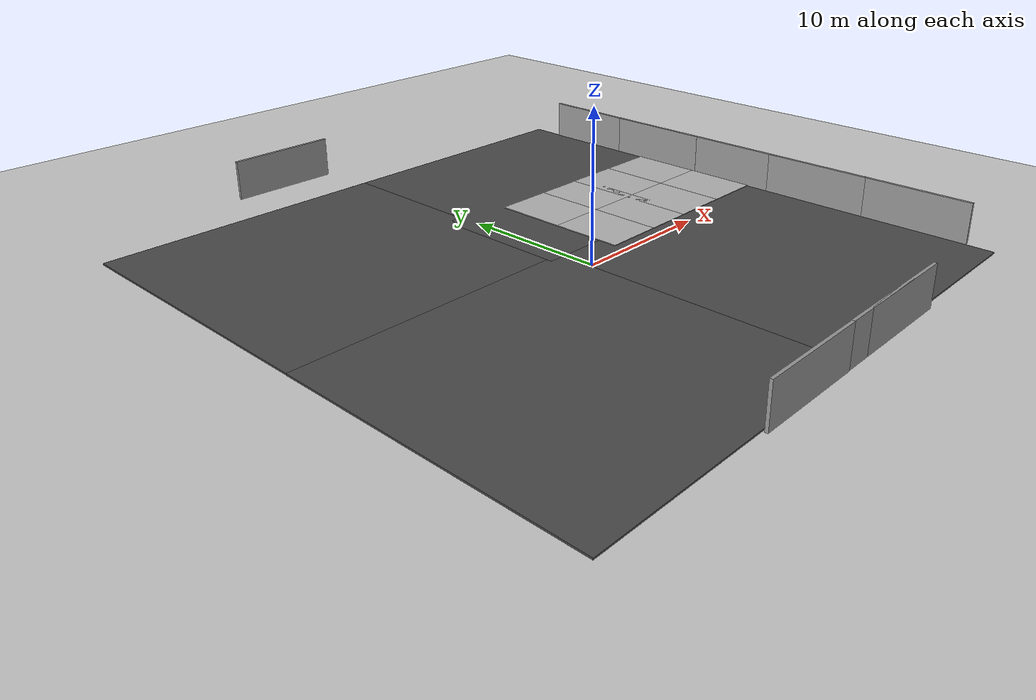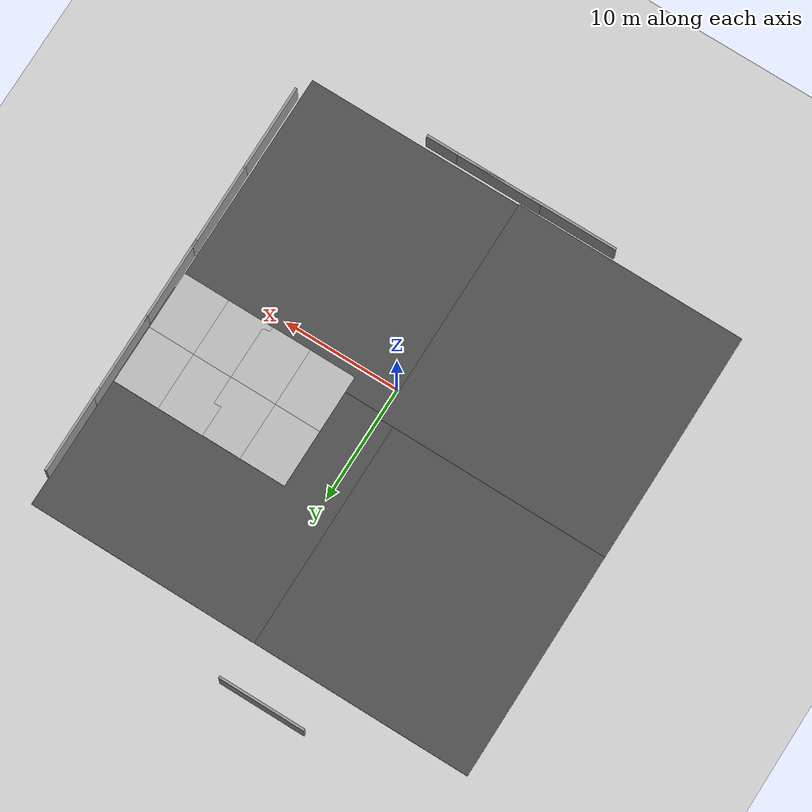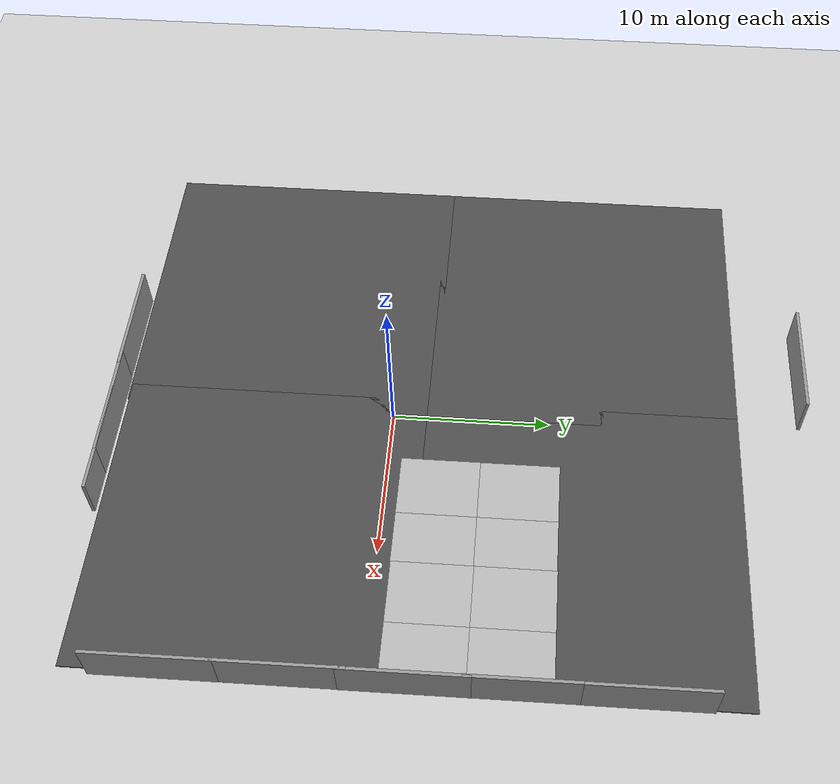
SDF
<sdf version="1.6">
 <world name="default">
  <model name="ground_plane">
   <static>1</static>
   <link name="link">
    <collision name="collision">
     <geometry><plane><normal>0 0 1</normal><size>100 100</size></plane></geometry>
     <surface><friction><ode><mu>100</mu><mu2>50</mu2></ode></friction></surface>
    </collision>
    <visual name="visual">
     <cast_shadows>0</cast_shadows>
     <geometry><plane><normal>0 0 1</normal><size>100 100</size></plane></geometry>
     <material>
      <script><uri>file://media/materials/scripts/gazebo.material</uri><name>Gazebo/Grey</name></script>
     </material>
    </visual>
   </link>
  </model>
  <model name="asphalt_plane">
   <static>1</static>
   <link name="link">
    <collision name="collision">
     <geometry><box><size>20 20 0.1</size></box></geometry>
     <surface><friction><ode><mu>100</mu><mu2>50</mu2></ode></friction></surface>
    </collision>
    <visual name="visual">
     <cast_shadows>0</cast_shadows>
     <geometry><box><size>20 20 0.1</size></box></geometry>
     <material>
      <script>
       <uri>model://asphalt_plane/materials/scripts</uri>
       <uri>model://asphalt_plane/materials/textures</uri>
       <name>vrc/asphalt</name>
      </script>
     </material>
    </visual>
   </link>
   <pose>-10.1692 -7.43707 0 0 -0 0</pose>
  </model>
  <model name="asphalt_plane_clone">
   <static>1</static>
   <link name="link">
    <collision name="collision">
     <geometry><box><size>20 20 0.1</size></box></geometry>
     <surface><friction><ode><mu>100</mu><mu2>50</mu2></ode></friction></surface>
    </collision>
    <visual name="visual">
     <cast_shadows>0</cast_shadows>
     <geometry><box><size>20 20 0.1</size></box></geometry>
     <material>
      <script>
       <uri>model://asphalt_plane/materials/scripts</uri>
       <uri>model://asphalt_plane/materials/textures</uri>
       <name>vrc/asphalt</name>
      </script>
     </material>
    </visual>
   </link>
   <pose>-10.1603 12.171 0 0 -0 0</pose>
  </model>
  <model name="asphalt_plane_clone_clone">
   <static>1</static>
   <link name="link">
    <collision name="collision">
     <geometry><box><size>20 20 0.1</size></box></geometry>
     <surface><friction><ode><mu>100</mu><mu2>50</mu2></ode></friction></surface>
    </collision>
    <visual name="visual">
     <cast_shadows>0</cast_shadows>
     <geometry><box><size>20 20 0.1</size></box></geometry>
     <material>
      <script>
       <uri>model://asphalt_plane/materials/scripts</uri>
       <uri>model://asphalt_plane/materials/textures</uri>
       <name>vrc/asphalt</name>
      </script>
     </material>
    </visual>
   </link>
   <pose>8.71597 12.1785 0 0 -0 0</pose>
  </model>
  <model name="asphalt_plane_clone_clone_0">
   <static>1</static>
   <link name="link">
    <collision name="collision">
     <geometry><box><size>20 20 0.1</size></box></geometry>
     <surface><friction><ode><mu>100</mu><mu2>50</mu2></ode></friction></surface>
    </collision>
    <visual name="visual">
     <cast_shadows>0</cast_shadows>
     <geometry><box><size>20 20 0.1</size></box></geometry>
     <material>
      <script>
       <uri>model://asphalt_plane/materials/scripts</uri>
       <uri>model://asphalt_plane/materials/textures</uri>
       <name>vrc/asphalt</name>
      </script>
     </material>
    </visual>
   </link>
   <pose>8.60996 -7.34898 0 0 -0 0</pose>
  </model>
  <model name="grey_wall">
   <static>1</static>
   <link name="link">
    <pose>0 0 1.4 0 -0 0</pose>
    <collision name="collision"><geometry><box><size>7.5 0.2 2.8</size></box></geometry></collision>
    <visual name="visual">
     <cast_shadows>0</cast_shadows>
     <geometry><box><size>7.5 0.2 2.8</size></box></geometry>
     <material>
      <script>
       <uri>model://grey_wall/materials/scripts</uri>
       <uri>model://grey_wall/materials/textures</uri>
       <name>vrc/grey_wall</name>
      </script>
     </material>
    </visual>
   </link>
   <pose>-4.8114 -17.6626 0 0 -0 0</pose>
  </model>
  <model name="grey_wall_clone">
   <static>1</static>
   <link name="link">
    <pose>0 0 1.4 0 -0 0</pose>
    <collision name="collision"><geometry><box><size>7.5 0.2 2.8</size></box></geometry></collision>
    <visual name="visual">
     <cast_shadows>0</cast_shadows>
     <geometry><box><size>7.5 0.2 2.8</size></box></geometry>
     <material>
      <script>
       <uri>model://grey_wall/materials/scripts</uri>
       <uri>model://grey_wall/materials/textures</uri>
       <name>vrc/grey_wall</name>
      </script>
     </material>
    </visual>
   </link>
   <pose>1.84642 -17.6367 0 0 -0 0</pose>
  </model>
  <model name="grey_wall_clone_0">
   <static>1</static>
   <link name="link">
    <pose>0 0 1.4 0 -0 0</pose>
    <collision name="collision"><geometry><box><size>7.5 0.2 2.8</size></box></geometry></collision>
    <visual name="visual">
     <cast_shadows>0</cast_shadows>
     <geometry><box><size>7.5 0.2 2.8</size></box></geometry>
     <material>
      <script>
       <uri>model://grey_wall/materials/scripts</uri>
       <uri>model://grey_wall/materials/textures</uri>
       <name>vrc/grey_wall</name>
      </script>
     </material>
    </visual>
   </link>
   <pose>4.62088 -17.6372 0 0 -0 0</pose>
  </model>
  <model name="grey_wall_clone_clone">
   <static>1</static>
   <link name="link">
    <pose>0 0 1.4 0 -0 0</pose>
    <collision name="collision"><geometry><box><size>7.5 0.2 2.8</size></box></geometry></collision>
    <visual name="visual">
     <cast_shadows>0</cast_shadows>
     <geometry><box><size>7.5 0.2 2.8</size></box></geometry>
     <material>
      <script>
       <uri>model://grey_wall/materials/scripts</uri>
       <uri>model://grey_wall/materials/textures</uri>
       <name>vrc/grey_wall</name>
      </script>
     </material>
    </visual>
   </link>
   <pose>-4.48764 26.0166 0 0 -0 0</pose>
  </model>
  <model name="grey_wall_clone_clone_clone">
   <static>1</static>
   <link name="link">
    <pose>0 0 1.4 0 -0 0</pose>
    <collision name="collision"><geometry><box><size>7.5 0.2 2.8</size></box></geometry></collision>
    <visual name="visual">
     <cast_shadows>0</cast_shadows>
     <geometry><box><size>7.5 0.2 2.8</size></box></geometry>
     <material>
      <script>
       <uri>model://grey_wall/materials/scripts</uri>
       <uri>model://grey_wall/materials/textures</uri>
       <name>vrc/grey_wall</name>
      </script>
     </material>
    </visual>
   </link>
   <pose>18.7544 16.0387 0 0 0 -1.56734</pose>
  </model>
  <model name="grey_wall_clone_clone_clone_clone">
   <static>1</static>
   <link name="link">
    <pose>0 0 1.4 0 -0 0</pose>
    <collision name="collision"><geometry><box><size>7.5 0.2 2.8</size></box></geometry></collision>
    <visual name="visual">
     <cast_shadows>0</cast_shadows>
     <geometry><box><size>7.5 0.2 2.8</size></box></geometry>
     <material>
      <script>
       <uri>model://grey_wall/materials/scripts</uri>
       <uri>model://grey_wall/materials/textures</uri>
       <name>vrc/grey_wall</name>
      </script>
     </material>
    </visual>
   </link>
   <pose>18.767 9.41754 0 0 0 -1.56734</pose>
  </model>
  <model name="grey_wall_clone_clone_clone_clone_0">
   <static>1</static>
   <link name="link">
    <pose>0 0 1.4 0 -0 0</pose>
    <collision name="collision"><geometry><box><size>7.5 0.2 2.8</size></box></geometry></collision>
    <visual name="visual">
     <cast_shadows>0</cast_shadows>
     <geometry><box><size>7.5 0.2 2.8</size></box></geometry>
     <material>
      <script>
       <uri>model://grey_wall/materials/scripts</uri>
       <uri>model://grey_wall/materials/textures</uri>
       <name>vrc/grey_wall</name>
      </script>
     </material>
    </visual>
   </link>
   <pose>18.7963 2.45369 0 0 0 -1.56734</pose>
  </model>
  <model name="grey_wall_clone_clone_clone_clone_1">
   <static>1</static>
   <link name="link">
    <pose>0 0 1.4 0 -0 0</pose>
    <collision name="collision"><geometry><box><size>7.5 0.2 2.8</size></box></geometry></collision>
    <visual name="visual">
     <cast_shadows>0</cast_shadows>
     <geometry><box><size>7.5 0.2 2.8</size></box></geometry>
     <material>
      <script>
       <uri>model://grey_wall/materials/scripts</uri>
       <uri>model://grey_wall/materials/textures</uri>
       <name>vrc/grey_wall</name>
      </script>
     </material>
    </visual>
   </link>
   <pose>18.8058 -4.41342 0 0 0 -1.56734</pose>
  </model>
  <model name="grey_wall_clone_clone_clone_clone_2">
   <static>1</static>
   <link name="link">
    <pose>0 0 1.4 0 -0 0</pose>
    <collision name="collision"><geometry><box><size>7.5 0.2 2.8</size></box></geometry></collision>
    <visual name="visual">
     <cast_shadows>0</cast_shadows>
     <geometry><box><size>7.5 0.2 2.8</size></box></geometry>
     <material>
      <script>
       <uri>model://grey_wall/materials/scripts</uri>
       <uri>model://grey_wall/materials/textures</uri>
       <name>vrc/grey_wall</name>
      </script>
     </material>
    </visual>
   </link>
   <pose>18.8343 -11.7301 0 0 0 -1.56734</pose>
  </model>
  <model name="mud_box">
   <static>1</static>
   <link name="link">
    <collision name="collision"><geometry><box><size>8 10 0.2</size></box></geometry></collision>
    <visual name="visual_1">
     <pose>-2 2.5 0 0 -0 0</pose>
     <cast_shadows>0</cast_shadows>
     <geometry><box><size>4 5 0.2</size></box></geometry>
     <material>
      <script>
       <uri>model://mud_box/materials/scripts</uri>
       <uri>model://mud_box/materials/textures</uri>
       <name>vrc/mud</name>
      </script>
     </material>
    </visual>
    <visual name="visual_2">
     <pose>2 2.5 0 0 -0 0</pose>
     <cast_shadows>0</cast_shadows>
     <geometry><box><size>4 5 0.2</size></box></geometry>
     <material>
      <script>
       <uri>model://mud_box/materials/scripts</uri>
       <uri>model://mud_box/materials/textures</uri>
       <name>vrc/mud</name>
      </script>
     </material>
    </visual>
    <visual name="visual_3">
     <pose>2 -2.5 0 0 -0 0</pose>
     <cast_shadows>0</cast_shadows>
     <geometry><box><size>4 5 0.2</size></box></geometry>
     <material>
      <script>
       <uri>model://mud_box/materials/scripts</uri>
       <uri>model://mud_box/materials/textures</uri>
       <name>vrc/mud</name>
      </script>
     </material>
    </visual>
    <visual name="visual_4">
     <pose>-2 -2.5 0 0 -0 0</pose>
     <cast_shadows>0</cast_shadows>
     <geometry><box><size>4 5 0.2</size></box></geometry>
     <material>
      <script>
       <uri>model://mud_box/materials/scripts</uri>
       <uri>model://mud_box/materials/textures</uri>
       <name>vrc/mud</name>
      </script>
     </material>
    </visual>
   </link>
   <pose>14.6137 5.86275 0 0 -0 0</pose>
  </model>
  <model name="mud_box_clone">
   <static>1</static>
   <link name="link">
    <collision name="collision"><geometry><box><size>8 10 0.2</size></box></geometry></collision>
    <visual name="visual_1">
     <pose>-2 2.5 0 0 -0 0</pose>
     <cast_shadows>0</cast_shadows>
     <geometry><box><size>4 5 0.2</size></box></geometry>
     <material>
      <script>
       <uri>model://mud_box/materials/scripts</uri>
       <uri>model://mud_box/materials/textures</uri>
       <name>vrc/mud</name>
      </script>
     </material>
    </visual>
    <visual name="visual_2">
     <pose>2 2.5 0 0 -0 0</pose>
     <cast_shadows>0</cast_shadows>
     <geometry><box><size>4 5 0.2</size></box></geometry>
     <material>
      <script>
       <uri>model://mud_box/materials/scripts</uri>
       <uri>model://mud_box/materials/textures</uri>
       <name>vrc/mud</name>
      </script>
     </material>
    </visual>
    <visual name="visual_3">
     <pose>2 -2.5 0 0 -0 0</pose>
     <cast_shadows>0</cast_shadows>
     <geometry><box><size>4 5 0.2</size></box></geometry>
     <material>
      <script>
       <uri>model://mud_box/materials/scripts</uri>
       <uri>model://mud_box/materials/textures</uri>
       <name>vrc/mud</name>
      </script>
     </material>
    </visual>
    <visual name="visual_4">
     <pose>-2 -2.5 0 0 -0 0</pose>
     <cast_shadows>0</cast_shadows>
     <geometry><box><size>4 5 0.2</size></box></geometry>
     <material>
      <script>
       <uri>model://mud_box/materials/scripts</uri>
       <uri>model://mud_box/materials/textures</uri>
       <name>vrc/mud</name>
      </script>
     </material>
    </visual>
   </link>
   <pose>7.23773 5.83307 0 0 -0 0</pose>
  </model>
  <light name="sun" type="directional">
   <pose>0 0 10 0 -0 0</pose>
   <diffuse>0.8 0.8 0.8 1</diffuse>
   <specular>0.2 0.2 0.2 1</specular>
   <attenuation>
    <range>1000</range>
    <constant>0.9</constant>
    <linear>0.01</linear>
    <quadratic>0.001</quadratic>
   </attenuation>
   <direction>-0.5 0.1 -0.9</direction>
  </light>
  <gravity>0 0 -9.8</gravity>
  <magnetic_field>6e-06 2.3e-05 -4.2e-05</magnetic_field>
  <atmosphere type="adiabatic"/>
  <physics name="default_physics" default="0" type="ode">
   <max_step_size>0.001</max_step_size>
   <real_time_factor>1</real_time_factor>
   <real_time_update_rate>1000</real_time_update_rate>
  </physics>
  <scene><ambient>0.4 0.4 0.4 1</ambient><background>0.7 0.7 0.7 1</background><shadows>1</shadows></scene>
  <audio><device>default</device></audio>
  <spherical_coordinates>
   <surface_model>EARTH_WGS84</surface_model>
   <latitude_deg>47.840640</latitude_deg>
   <longitude_deg>10.619944</longitude_deg>
   <elevation>740.0</elevation>
   <heading_deg>180</heading_deg>
  </spherical_coordinates>
  <model name="viewer_camera">
   <pose>-1.6 0 1.3 0 0.35 0</pose>
   <link name="link">
    <gravity>0</gravity>
    <kinematic>1</kinematic>
    <inertial>
     <mass>0.1</mass>
     <inertia><ixx>0.0001</ixx><ixy>0</ixy><ixz>0</ixz><iyy>0.0001</iyy><iyz>0</iyz><izz>0.0001</izz></inertia>
    </inertial>
    <sensor name="viewer_camera" type="camera">
     <always_on>true</always_on>
     <update_rate>30</update_rate>
     <visualize>false</visualize>
     <camera>
      <horizontal_fov>1.5708</horizontal_fov>
      <image><width>1280</width><height>864</height><format>R8G8B8</format></image>
      <clip><near>0.05</near><far>150</far></clip>
     </camera>
     <plugin name="viewer_camera_image" filename="libgazebo_ros_camera.so">
      <ros>
       <remapping>~/image_raw:=/chase_camera/image_raw</remapping>
       <remapping>~/camera_info:=/chase_camera/camera_info</remapping>
       <parameter name="chase_camera.image_raw.jpeg_quality" type="int">80</parameter>
      </ros>
      <camera_name>chase_camera</camera_name>
      <frame_name>viewer_camera</frame_name>
     </plugin>
    </sensor>
   </link>
   <plugin name="viewer_camera_controller" filename="libviewer_camera_plugin.so">
    <ros><namespace>/viewer_camera</namespace></ros>
    <target>basic_mobile_bot</target>
    <azimuth>0</azimuth>
    <elevation>0.3</elevation>
    <distance>2.8</distance>
    <offset>0 0 0.8</offset>
    <follow_heading>true</follow_heading>
    <heading_lag>0.12</heading_lag>
   </plugin>
  </model>
 </world>
</sdf>
